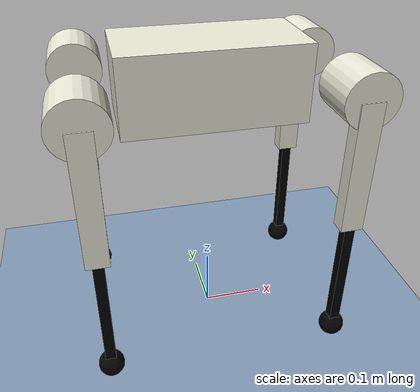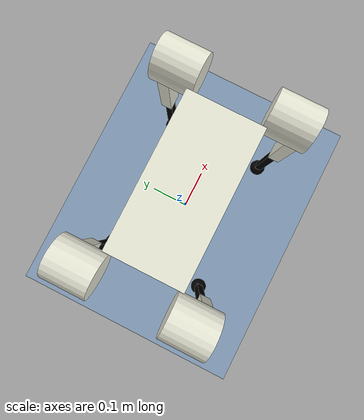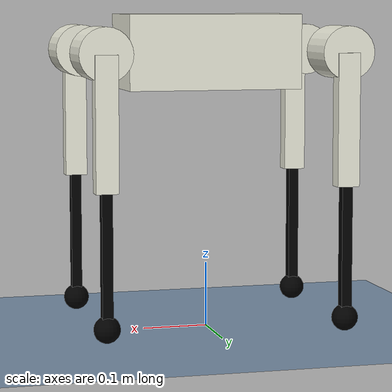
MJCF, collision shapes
<mujoco model="scene">

  <statistic center="0 0 0.1" extent="0.8"/>

  <visual>
    <headlight diffuse="0.6 0.6 0.6"  ambient="0.3 0.3 0.3" specular="0 0 0"/>
    <rgba haze="0.15 0.25 0.35 1"/>
    <global azimuth="120" elevation="-20"/>
  </visual>

  <asset>
    <texture type="skybox" builtin="gradient" rgb1="0.3 0.5 0.7" rgb2="0 0 0" width="512"
        height="3072"/>
    <texture type="2d" name="groundplane" builtin="checker" mark="edge" rgb1="0.2 0.3 0.4"
        rgb2="0.1 0.2 0.3" markrgb="0.8 0.8 0.8" width="300" height="300"/>
    <material name="groundplane" texture="groundplane" texuniform="true" texrepeat="5 5"
        reflectance="0.2"/>
  </asset>

  <include file="witp/a1_torque.xml"/>

  <worldbody>
    <geom name="floor" size="0 0 0.05" type="plane" material="groundplane"/>
    <light name="ceiling" pos="0 0 2" dir="0 0 -1" directional="true"/>
    <camera name="target_from_origin"  pos="0 0 1.25" xyaxes="0 -1 0 1 0 0" mode="targetbodycom" target="trunk"/>
    <camera name="fixed_right" pos="2 -3 0.5" xyaxes="1 0 0 0 0.08 0.92" fovy="15" mode="fixed"/>
  </worldbody>

</mujoco>

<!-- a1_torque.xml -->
<mujoco model="a1">
  <compiler angle="radian" meshdir="meshes" />
  <size njmax="500" nconmax="100" />

  <default>
    <geom contype="1" conaffinity="0" rgba="0.5 0.6 0.7 1" margin="0.001" condim="6" solref="0.02 1" solimp="0.8 0.9 0.01" />
    <joint damping="0.01" armature="0.01" frictionloss="0.2" solreflimit="0.01 1" solimplimit="0.9 0.99 0.01" />

    <default class="abduction">
      <joint pos="0 0 0" axis="1 0 0" limited="true" range="-0.802851 0.802851" />
      <motor gear="1" ctrllimited="true" ctrlrange="-33.5 33.5" />
    </default>

    <default class="hip">
      <joint pos="0 0 0" axis="0 1 0" limited="true" range="-1.0472 4.18879" />
      <motor gear="1" ctrllimited="true" ctrlrange="-33.5 33.5" />
    </default>

    <default class="knee">
      <joint pos="0 0 0" axis="0 1 0" limited="true" range="-2.69653 -0.916298" />
      <motor gear="1" ctrllimited="true" ctrlrange="-33.5 33.5" />
    </default>

    <default class="visual">
      <geom contype="0" conaffinity="0" group="2" />
    </default>

    <default class="collision">
      <geom group="3" />
    </default>
  </default>

  <asset>
    <mesh name="trunk" file="trunk.stl" />
    <mesh name="hip" file="hip.stl" />
    <mesh name="thigh_mirror" file="thigh_mirror.stl" />
    <mesh name="calf" file="calf.stl" />
    <mesh name="thigh" file="thigh.stl" />
  </asset>

  <worldbody>
    <body name="trunk" pos="0 0 0.43">
      <freejoint/>

      <light name="spotlight_right" pos="0 -1 2" mode="track" />
      <light name="spotlight_left" pos="0 1 2" mode="track" />
      <camera name="track_top_front"  pos="0 0 1.25" xyaxes="0 -1 0 1 0 0" mode="track"/>
      <camera name="track_top_right"  pos="0 0 1.25" xyaxes="1 0 0 0 1 0" mode="track"/>
      <camera name="track_front" pos="1.25 0 0" xyaxes="0 1 0 0 0 1" mode="track"/>
      <camera name="track_back"  pos="-1.25 0 0" xyaxes="0 -1 0 0 0 1" mode="track"/>
      <camera name="track_right" pos="0 -1.25 0" xyaxes="1 0 0 0 0 1" mode="track"/>
      <camera name="track_left"  pos="0 1.25 0" xyaxes="-1 0 0 0 0 1" mode="track"/>

      <inertial pos="0.0127283 0.00218554 0.000514891" quat="0.00186575 0.711506 0.000389649 0.702677" mass="4.714" diaginertia="0.0648213 0.0565803 0.0169323" />
      <geom class="visual" type="mesh" rgba="0.913725 0.913725 0.847059 1" mesh="trunk" />
      <geom class="collision" size="0.1335 0.066 0.057" type="box" rgba="0.913725 0.913725 0.847059 1" />
      <geom class="visual" size="0.0005 0.0005 0.0005" type="box" rgba="0.8 0 0 0" />
      <geom class="collision" size="0.0005 0.0005 0.0005" type="box" rgba="0.8 0 0 1" />
      <site name="imu" pos="0 0 0" />

      <body name="FR_hip" pos="0.183 -0.047 0">
        <inertial pos="-0.003311 -0.000635 3.1e-05" quat="0.507528 0.506268 0.491507 0.494499" mass="0.696" diaginertia="0.000807752 0.00055293 0.000468983" />
        <joint class="abduction" name="FR_hip_joint" />
        <geom class="visual" quat="0 1 0 0" type="mesh" rgba="0.913725 0.913725 0.847059 1" mesh="hip" />
        <geom class="collision" size="0.04 0.04" pos="0 -0.055 0" quat="0.707107 0.707107 0 0" type="cylinder" rgba="0.913725 0.913725 0.847059 1" />

        <body name="FR_thigh" pos="0 -0.08505 0">
          <inertial pos="-0.003237 0.022327 -0.027326" quat="0.999125 -0.00256393 -0.0409531 -0.00806091" mass="1.013" diaginertia="0.00555739 0.00513936 0.00133944" />
          <joint class="hip" name="FR_thigh_joint" />
          <geom class="visual" type="mesh" rgba="0.913725 0.913725 0.847059 1" mesh="thigh_mirror" />
          <geom class="collision" size="0.1 0.01225 0.017" pos="0 0 -0.1" quat="0.707107 0 0.707107 0" type="box" rgba="0.913725 0.913725 0.847059 1" />

          <body name="FR_calf" pos="0 0 -0.2">
            <inertial pos="0.00472659 0 -0.131975" quat="0.706886 0.017653 0.017653 0.706886" mass="0.226" diaginertia="0.00340344 0.00339393 3.54834e-05" />
            <joint class="knee" name="FR_calf_joint" />
            <geom class="visual" type="mesh" rgba="0 0 0 1" mesh="calf" />
            <geom class="collision" size="0.1 0.008 0.008" pos="0 0 -0.1" quat="0.707107 0 0.707107 0" type="box" rgba="0 0 0 1" />
            <geom class="visual" size="0.01" pos="0 0 -0.2" rgba="0 0 0 1" />
            <geom class="collision" name="FR_foot" size="0.02" pos="0 0 -0.2" rgba="0 0 0 1" />
          </body>
        </body>
      </body>

      <body name="FL_hip" pos="0.183 0.047 0">
        <inertial pos="-0.003311 0.000635 3.1e-05" quat="0.494499 0.491507 0.506268 0.507528" mass="0.696" diaginertia="0.000807752 0.00055293 0.000468983" />
        <joint class="abduction" name="FL_hip_joint" />
        <geom class="visual" type="mesh" rgba="0.913725 0.913725 0.847059 1" mesh="hip" />
        <geom class="collision" size="0.04 0.04" pos="0 0.055 0" quat="0.707107 0.707107 0 0" type="cylinder" rgba="0.913725 0.913725 0.847059 1" />

        <body name="FL_thigh" pos="0 0.08505 0">
          <inertial pos="-0.003237 -0.022327 -0.027326" quat="0.999125 0.00256393 -0.0409531 0.00806091" mass="1.013" diaginertia="0.00555739 0.00513936 0.00133944" />
          <joint class="hip" name="FL_thigh_joint" />
          <geom class="visual" type="mesh" rgba="0.913725 0.913725 0.847059 1" mesh="thigh" />
          <geom class="collision" size="0.1 0.01225 0.017" pos="0 0 -0.1" quat="0.707107 0 0.707107 0" type="box" rgba="0.913725 0.913725 0.847059 1" />

          <body name="FL_calf" pos="0 0 -0.2">
            <inertial pos="0.00472659 0 -0.131975" quat="0.706886 0.017653 0.017653 0.706886" mass="0.226" diaginertia="0.00340344 0.00339393 3.54834e-05" />
            <joint class="knee" name="FL_calf_joint" />
            <geom class="visual" type="mesh" rgba="0 0 0 1" mesh="calf" />
            <geom class="collision" size="0.1 0.008 0.008" pos="0 0 -0.1" quat="0.707107 0 0.707107 0" type="box" rgba="0 0 0 1" />
            <geom class="visual" size="0.01" pos="0 0 -0.2" rgba="0 0 0 1" />
            <geom class="collision" name="FL_foot" size="0.02" pos="0 0 -0.2" rgba="0 0 0 1" />
          </body>
        </body>
      </body>

      <body name="RR_hip" pos="-0.183 -0.047 0">
        <inertial pos="0.003311 -0.000635 3.1e-05" quat="0.491507 0.494499 0.507528 0.506268" mass="0.696" diaginertia="0.000807752 0.00055293 0.000468983" />
        <joint class="abduction" name="RR_hip_joint" />
        <geom class="visual" quat="0 0 0 -1" type="mesh" rgba="0.913725 0.913725 0.847059 1" mesh="hip" />
        <geom class="collision" size="0.04 0.04" pos="0 -0.055 0" quat="0.707107 0.707107 0 0" type="cylinder" rgba="0.913725 0.913725 0.847059 1" />

        <body name="RR_thigh" pos="0 -0.08505 0">
          <inertial pos="-0.003237 0.022327 -0.027326" quat="0.999125 -0.00256393 -0.0409531 -0.00806091" mass="1.013" diaginertia="0.00555739 0.00513936 0.00133944" />
          <joint class="hip" name="RR_thigh_joint" />
          <geom class="visual" type="mesh" rgba="0.913725 0.913725 0.847059 1" mesh="thigh_mirror" />
          <geom class="collision" size="0.1 0.01225 0.017" pos="0 0 -0.1" quat="0.707107 0 0.707107 0" type="box" rgba="0.913725 0.913725 0.847059 1" />

          <body name="RR_calf" pos="0 0 -0.2">
            <inertial pos="0.00472659 0 -0.131975" quat="0.706886 0.017653 0.017653 0.706886" mass="0.226" diaginertia="0.00340344 0.00339393 3.54834e-05" />
            <joint class="knee" name="RR_calf_joint" />
            <geom class="visual" type="mesh" rgba="0 0 0 1" mesh="calf" />
            <geom class="collision" size="0.1 0.008 0.008" pos="0 0 -0.1" quat="0.707107 0 0.707107 0" type="box" rgba="0 0 0 1" />
            <geom class="visual" size="0.01" pos="0 0 -0.2" rgba="0 0 0 1" />
            <geom class="collision" name="RR_foot" size="0.02" pos="0 0 -0.2" rgba="0 0 0 1" />
          </body>
        </body>
      </body>

      <body name="RL_hip" pos="-0.183 0.047 0">
        <inertial pos="0.003311 0.000635 3.1e-05" quat="0.506268 0.507528 0.494499 0.491507" mass="0.696" diaginertia="0.000807752 0.00055293 0.000468983" />
        <joint class="abduction" name="RL_hip_joint" />
        <geom class="visual" quat="0 0 1 0" type="mesh" rgba="0.913725 0.913725 0.847059 1" mesh="hip" />
        <geom class="collision" size="0.04 0.04" pos="0 0.055 0" quat="0.707107 0.707107 0 0" type="cylinder" rgba="0.913725 0.913725 0.847059 1" />

        <body name="RL_thigh" pos="0 0.08505 0">
          <inertial pos="-0.003237 -0.022327 -0.027326" quat="0.999125 0.00256393 -0.0409531 0.00806091" mass="1.013" diaginertia="0.00555739 0.00513936 0.00133944" />
          <joint class="hip" name="RL_thigh_joint" />
          <geom class="visual" type="mesh" rgba="0.913725 0.913725 0.847059 1" mesh="thigh" />
          <geom class="collision" size="0.1 0.01225 0.017" pos="0 0 -0.1" quat="0.707107 0 0.707107 0" type="box" rgba="0.913725 0.913725 0.847059 1" />

          <body name="RL_calf" pos="0 0 -0.2">
            <inertial pos="0.00472659 0 -0.131975" quat="0.706886 0.017653 0.017653 0.706886" mass="0.226" diaginertia="0.00340344 0.00339393 3.54834e-05" />
            <joint class="knee" name="RL_calf_joint" />
            <geom class="visual" type="mesh" rgba="0 0 0 1" mesh="calf" />
            <geom class="collision" size="0.1 0.008 0.008" pos="0 0 -0.1" quat="0.707107 0 0.707107 0" type="box" rgba="0 0 0 1" />
            <geom class="visual" size="0.01" pos="0 0 -0.2" rgba="0 0 0 1" />
            <geom class="collision" name="RL_foot" size="0.02" pos="0 0 -0.2" rgba="0 0 0 1" />
          </body>
        </body>
      </body>
    </body>
  </worldbody>

  <actuator>
    <motor class="abduction" name="FR_hip"   joint="FR_hip_joint" />
    <motor class="hip"       name="FR_thigh" joint="FR_thigh_joint" />
    <motor class="knee"      name="FR_calf"  joint="FR_calf_joint" />
    <motor class="abduction" name="FL_hip"   joint="FL_hip_joint" />
    <motor class="hip"       name="FL_thigh" joint="FL_thigh_joint" />
    <motor class="knee"      name="FL_calf"  joint="FL_calf_joint" />
    <motor class="abduction" name="RR_hip"   joint="RR_hip_joint" />
    <motor class="hip"       name="RR_thigh" joint="RR_thigh_joint" />
    <motor class="knee"      name="RR_calf"  joint="RR_calf_joint" />
    <motor class="abduction" name="RL_hip"   joint="RL_hip_joint" />
    <motor class="hip"       name="RL_thigh" joint="RL_thigh_joint" />
    <motor class="knee"      name="RL_calf"  joint="RL_calf_joint" />
  </actuator>

  <sensor>
    <gyro name="gyro" site="imu" />
    <accelerometer name="accelerometer" site="imu" />
    <framequat name="framequat" objtype="site" objname="imu" />
    <velocimeter name="velocimeter" site="imu" />
  </sensor>
</mujoco>
